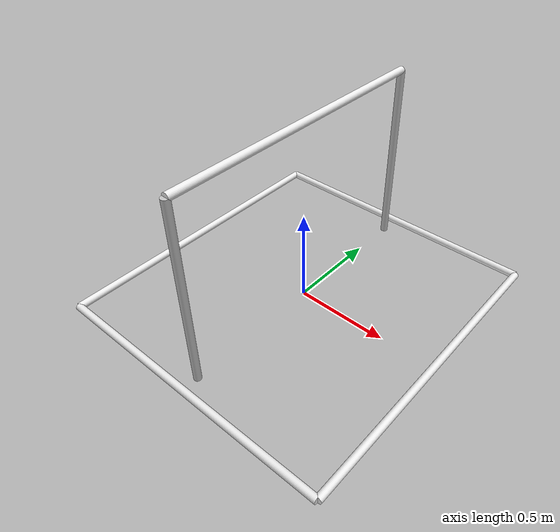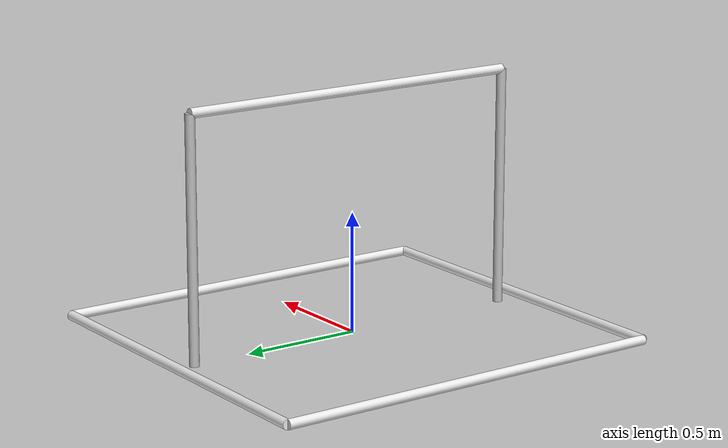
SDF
<?xml version="1.0"?>
<sdf version="1.9">
  <model name="sauvc_final_gate">
    <static>true</static>
    <plugin filename="gz-sim-label-system" name="gz::sim::systems::Label">
      <label>2</label>
    </plugin>
    <link name="top_bar">
      <pose>0 0 1 1.570796 0 0</pose>
      <inertial>
        <pose>0 0 0 0 0 0</pose>
        <mass>1</mass>
        <inertia>
          <ixx>0.1876</ixx><ixy>0</ixy><ixz>0</ixz>
          <iyy>0.1876</iyy><iyz>0</iyz>
          <izz>0.0002</izz>
        </inertia>
      </inertial>
      <visual name="top_bar_visual">
        <pose>0 0 0 0 0 0</pose>
        <geometry><cylinder><radius>0.02</radius><length>1.5</length></cylinder></geometry>
        <material>
          <ambient>0.92 0.92 0.92 1</ambient>
          <diffuse>0.92 0.92 0.92 1</diffuse>
          <specular>0.2 0.2 0.2 1</specular>
          <emissive>0.23 0.23 0.23 1</emissive>
        </material>
      </visual>
      <collision name="top_bar_collision">
        <pose>0 0 0 0 0 0</pose>
        <geometry><cylinder><radius>0.02</radius><length>1.5</length></cylinder></geometry>
      </collision>
    </link>
    <link name="post_port">
      <pose>0 0.75 0.5 0 0 0</pose>
      <inertial>
        <pose>0 0 0 0 0 0</pose>
        <mass>1</mass>
        <inertia>
          <ixx>0.0834333</ixx><ixy>0</ixy><ixz>0</ixz>
          <iyy>0.0834333</iyy><iyz>0</iyz>
          <izz>0.0002</izz>
        </inertia>
      </inertial>
      <visual name="post_port_visual">
        <pose>0 0 0 0 0 0</pose>
        <geometry><cylinder><radius>0.02</radius><length>1</length></cylinder></geometry>
        <material>
          <ambient>0.75 0.75 0.75 1</ambient>
          <diffuse>0.75 0.75 0.75 1</diffuse>
          <specular>0.25 0.25 0.25 1</specular>
          <emissive>0.12 0.12 0.12 1</emissive>
          <pbr>
            <metal>
              <albedo_map>model://sauvc_textures/gate_stripe_red.png</albedo_map>
              <metalness>0.0</metalness>
              <roughness_map>model://sauvc_textures/rough_pvc.png</roughness_map>
              <normal_map>model://sauvc_textures/norm_pvc.png</normal_map>
            </metal>
          </pbr>
        </material>
      </visual>
      <collision name="post_port_collision">
        <pose>0 0 0 0 0 0</pose>
        <geometry><cylinder><radius>0.02</radius><length>1</length></cylinder></geometry>
      </collision>
    </link>
    <link name="post_starboard">
      <pose>0 -0.75 0.5 0 0 0</pose>
      <inertial>
        <pose>0 0 0 0 0 0</pose>
        <mass>1</mass>
        <inertia>
          <ixx>0.0834333</ixx><ixy>0</ixy><ixz>0</ixz>
          <iyy>0.0834333</iyy><iyz>0</iyz>
          <izz>0.0002</izz>
        </inertia>
      </inertial>
      <visual name="post_starboard_visual">
        <pose>0 0 0 0 0 0</pose>
        <geometry><cylinder><radius>0.02</radius><length>1</length></cylinder></geometry>
        <material>
          <ambient>0.75 0.75 0.75 1</ambient>
          <diffuse>0.75 0.75 0.75 1</diffuse>
          <specular>0.25 0.25 0.25 1</specular>
          <emissive>0.12 0.12 0.12 1</emissive>
          <pbr>
            <metal>
              <albedo_map>model://sauvc_textures/gate_stripe_green.png</albedo_map>
              <metalness>0.0</metalness>
              <roughness_map>model://sauvc_textures/rough_pvc.png</roughness_map>
              <normal_map>model://sauvc_textures/norm_pvc.png</normal_map>
            </metal>
          </pbr>
        </material>
      </visual>
      <collision name="post_starboard_collision">
        <pose>0 0 0 0 0 0</pose>
        <geometry><cylinder><radius>0.02</radius><length>1</length></cylinder></geometry>
      </collision>
    </link>
    <link name="base_front">
      <pose>0.8 0 0.02 1.570796 0 0</pose>
      <inertial>
        <pose>0 0 0 0 0 0</pose>
        <mass>1</mass>
        <inertia>
          <ixx>0.240933</ixx><ixy>0</ixy><ixz>0</ixz>
          <iyy>0.240933</iyy><iyz>0</iyz>
          <izz>0.0002</izz>
        </inertia>
      </inertial>
      <visual name="base_front_visual">
        <pose>0 0 0 0 0 0</pose>
        <geometry><cylinder><radius>0.02</radius><length>1.7</length></cylinder></geometry>
        <material>
          <ambient>0.92 0.92 0.92 1</ambient>
          <diffuse>0.92 0.92 0.92 1</diffuse>
          <specular>0.2 0.2 0.2 1</specular>
          <emissive>0.23 0.23 0.23 1</emissive>
        </material>
      </visual>
      <collision name="base_front_collision">
        <pose>0 0 0 0 0 0</pose>
        <geometry><cylinder><radius>0.02</radius><length>1.7</length></cylinder></geometry>
      </collision>
    </link>
    <link name="base_back">
      <pose>-0.8 0 0.02 1.570796 0 0</pose>
      <inertial>
        <pose>0 0 0 0 0 0</pose>
        <mass>1</mass>
        <inertia>
          <ixx>0.240933</ixx><ixy>0</ixy><ixz>0</ixz>
          <iyy>0.240933</iyy><iyz>0</iyz>
          <izz>0.0002</izz>
        </inertia>
      </inertial>
      <visual name="base_back_visual">
        <pose>0 0 0 0 0 0</pose>
        <geometry><cylinder><radius>0.02</radius><length>1.7</length></cylinder></geometry>
        <material>
          <ambient>0.92 0.92 0.92 1</ambient>
          <diffuse>0.92 0.92 0.92 1</diffuse>
          <specular>0.2 0.2 0.2 1</specular>
          <emissive>0.23 0.23 0.23 1</emissive>
        </material>
      </visual>
      <collision name="base_back_collision">
        <pose>0 0 0 0 0 0</pose>
        <geometry><cylinder><radius>0.02</radius><length>1.7</length></cylinder></geometry>
      </collision>
    </link>
    <link name="base_left">
      <pose>0 0.85 0.02 0 1.570796 0</pose>
      <inertial>
        <pose>0 0 0 0 0 0</pose>
        <mass>1</mass>
        <inertia>
          <ixx>0.213433</ixx><ixy>0</ixy><ixz>0</ixz>
          <iyy>0.213433</iyy><iyz>0</iyz>
          <izz>0.0002</izz>
        </inertia>
      </inertial>
      <visual name="base_left_visual">
        <pose>0 0 0 0 0 0</pose>
        <geometry><cylinder><radius>0.02</radius><length>1.6</length></cylinder></geometry>
        <material>
          <ambient>0.92 0.92 0.92 1</ambient>
          <diffuse>0.92 0.92 0.92 1</diffuse>
          <specular>0.2 0.2 0.2 1</specular>
          <emissive>0.23 0.23 0.23 1</emissive>
        </material>
      </visual>
      <collision name="base_left_collision">
        <pose>0 0 0 0 0 0</pose>
        <geometry><cylinder><radius>0.02</radius><length>1.6</length></cylinder></geometry>
      </collision>
    </link>
    <link name="base_right">
      <pose>0 -0.85 0.02 0 1.570796 0</pose>
      <inertial>
        <pose>0 0 0 0 0 0</pose>
        <mass>1</mass>
        <inertia>
          <ixx>0.213433</ixx><ixy>0</ixy><ixz>0</ixz>
          <iyy>0.213433</iyy><iyz>0</iyz>
          <izz>0.0002</izz>
        </inertia>
      </inertial>
      <visual name="base_right_visual">
        <pose>0 0 0 0 0 0</pose>
        <geometry><cylinder><radius>0.02</radius><length>1.6</length></cylinder></geometry>
        <material>
          <ambient>0.92 0.92 0.92 1</ambient>
          <diffuse>0.92 0.92 0.92 1</diffuse>
          <specular>0.2 0.2 0.2 1</specular>
          <emissive>0.23 0.23 0.23 1</emissive>
        </material>
      </visual>
      <collision name="base_right_collision">
        <pose>0 0 0 0 0 0</pose>
        <geometry><cylinder><radius>0.02</radius><length>1.6</length></cylinder></geometry>
      </collision>
    </link>
  </model>
</sdf>
